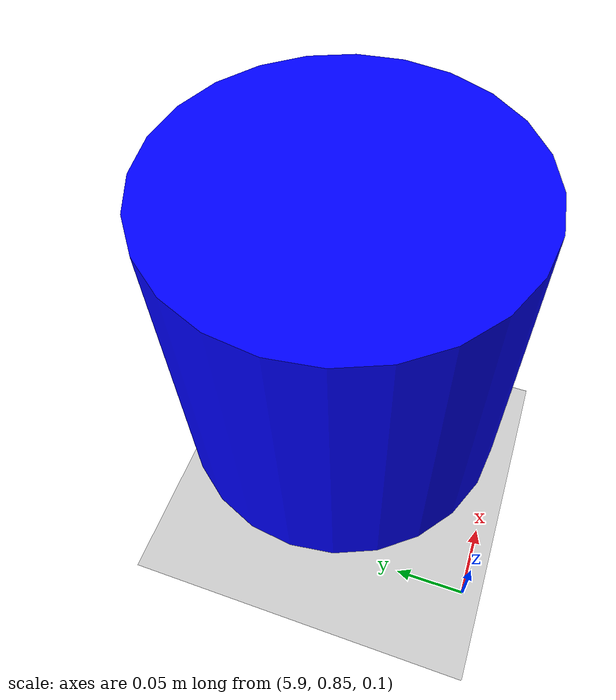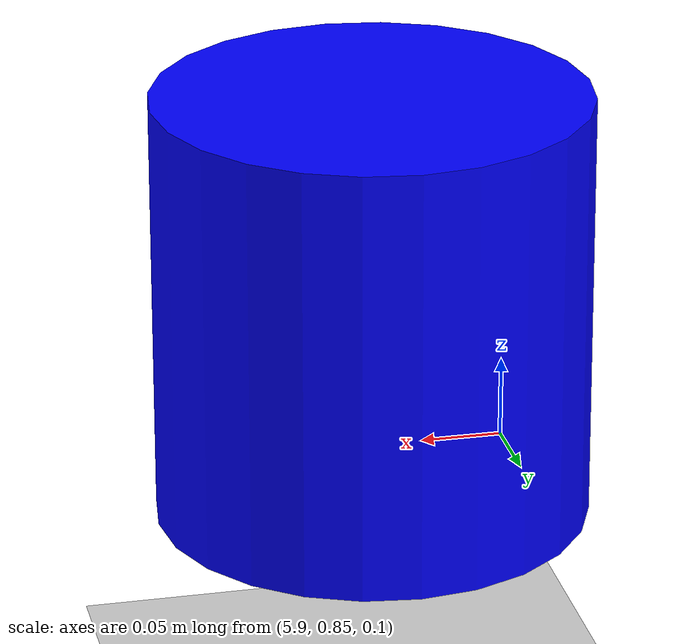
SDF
<?xml version="1.0" ?>
<sdf version="1.6">
  <world name="default">
    <plugin name="gazebo_ros_init" filename="libgazebo_ros_init.so"/>
    <plugin name="gazebo_ros_state" filename="libgazebo_ros_state.so"/>

    <include>
      <uri>model://sun</uri>
    </include>

    <include>
      <uri>model://ground_plane</uri>
    </include>

    <!-- 单桶: 机体正前方 5m -->
    <!-- Gazebo (6.01, 0.98, 0.25) → NED (0, 5, ~0.58) -->
    <model name="target_bucket">
      <pose>6.01 0.98 0.25 0 0 0</pose>
      <link name="bucket_link">
        <inertial>
          <mass>0.5</mass>
          <inertia>
            <ixx>0.01</ixx><ixy>0</ixy><ixz>0</ixz>
            <iyy>0.01</iyy><iyz>0</iyz>
            <izz>0.01</izz>
          </inertia>
        </inertial>
        <collision name="bucket_collision">
          <geometry>
            <cylinder><radius>0.125</radius><length>0.25</length></cylinder>
          </geometry>
        </collision>
        <visual name="bucket_visual">
          <geometry>
            <cylinder><radius>0.125</radius><length>0.25</length></cylinder>
          </geometry>
          <material>
            <ambient>0 0 1 1</ambient>
            <diffuse>0 0 1 1</diffuse>
          </material>
        </visual>
      </link>
    </model>

  </world>
</sdf>
